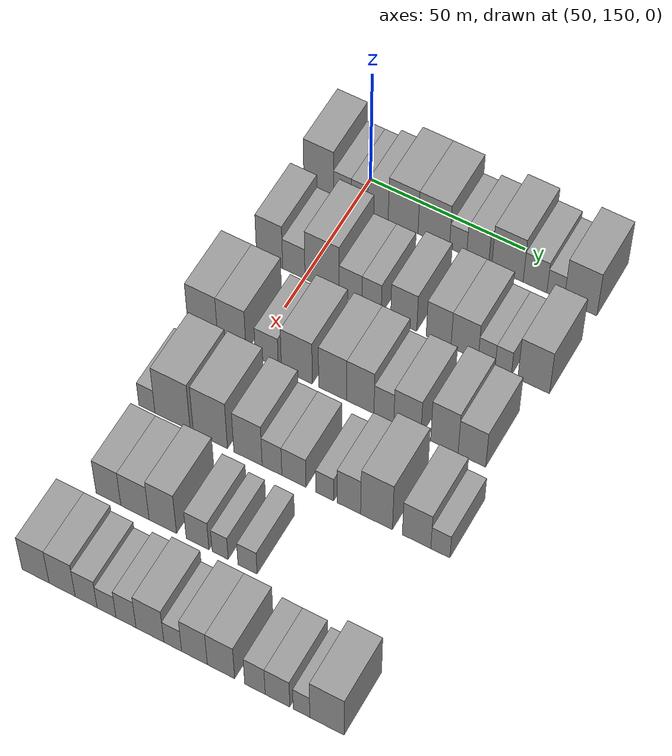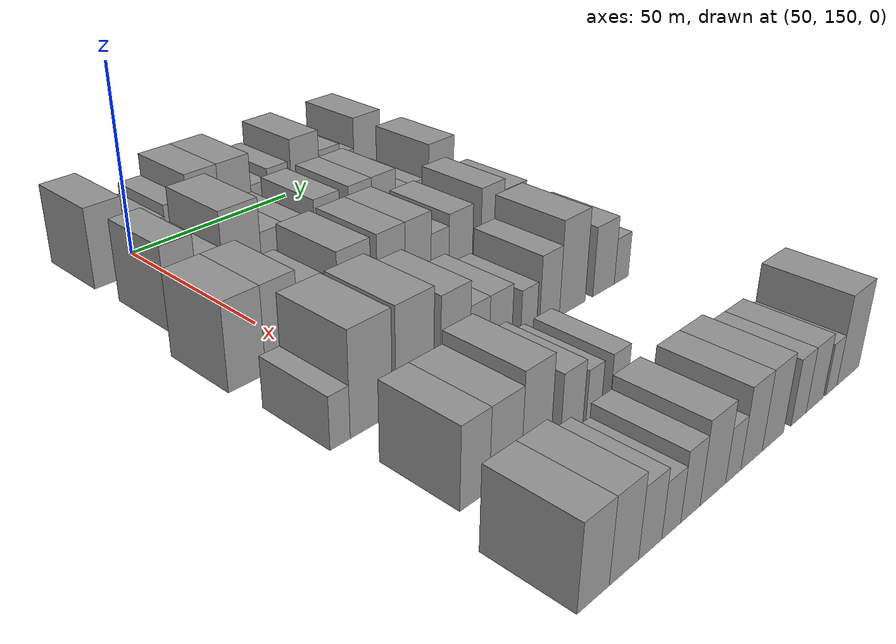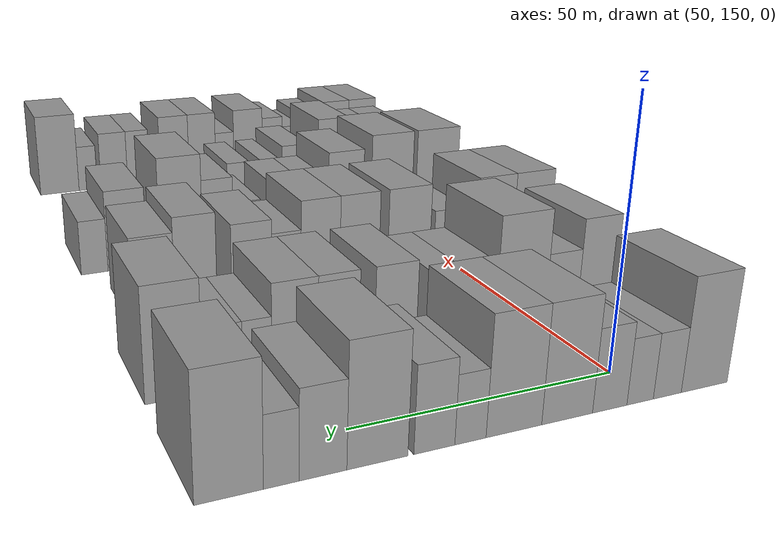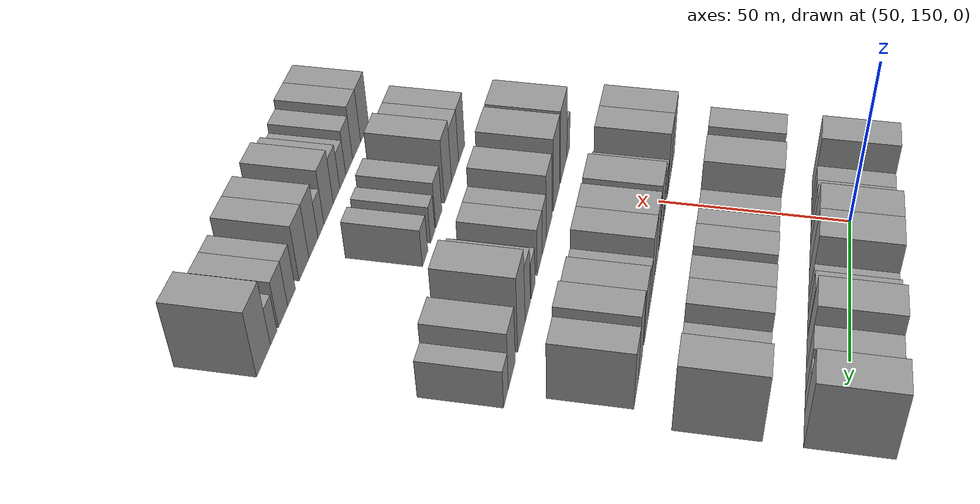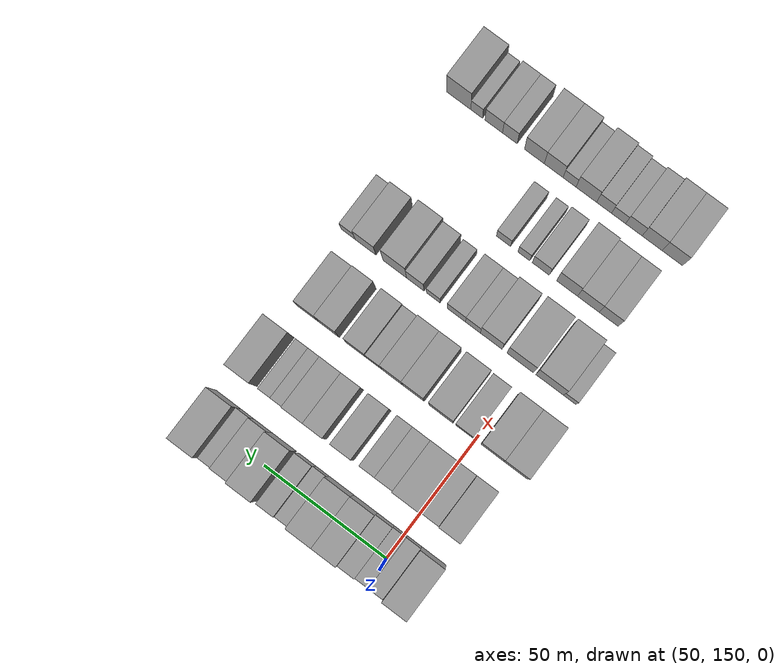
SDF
<sdf version="1.6">
 <world name="default">
  <model name="building_68">
   <static>1</static>
   <pose>50.0000 138.3827 0 0.000000 0.000000 0.000000</pose>
   <link name="link">
    <pose>0 0 10.50 0 0 0</pose>
    <collision name="collision"><geometry><box><size>20.0000 9.7784 21.0000</size></box></geometry></collision>
    <visual name="visual">
     <cast_shadows>0</cast_shadows>
     <geometry><box><size>20.0000 9.7784 21.0000</size></box></geometry>
     <material>
      <script>
       <uri>model://grey_wall/materials/scripts</uri>
       <uri>model://grey_wall/materials/textures</uri>
       <name>vrc/grey_wall</name>
      </script>
     </material>
    </visual>
   </link>
  </model>
  <model name="building_69">
   <static>1</static>
   <pose>50.0000 146.1593 0 0.000000 0.000000 0.000000</pose>
   <link name="link">
    <pose>0 0 6.00 0 0 0</pose>
    <collision name="collision"><geometry><box><size>20.0000 5.7748 12.0000</size></box></geometry></collision>
    <visual name="visual">
     <cast_shadows>0</cast_shadows>
     <geometry><box><size>20.0000 5.7748 12.0000</size></box></geometry>
     <material>
      <script>
       <uri>model://grey_wall/materials/scripts</uri>
       <uri>model://grey_wall/materials/textures</uri>
       <name>vrc/grey_wall</name>
      </script>
     </material>
    </visual>
   </link>
  </model>
  <model name="building_70">
   <static>1</static>
   <pose>50.0000 151.7193 0 0.000000 0.000000 0.000000</pose>
   <link name="link">
    <pose>0 0 6.00 0 0 0</pose>
    <collision name="collision"><geometry><box><size>20.0000 5.3453 12.0000</size></box></geometry></collision>
    <visual name="visual">
     <cast_shadows>0</cast_shadows>
     <geometry><box><size>20.0000 5.3453 12.0000</size></box></geometry>
     <material>
      <script>
       <uri>model://grey_wall/materials/scripts</uri>
       <uri>model://grey_wall/materials/textures</uri>
       <name>vrc/grey_wall</name>
      </script>
     </material>
    </visual>
   </link>
  </model>
  <model name="building_71">
   <static>1</static>
   <pose>50.0000 157.7766 0 0.000000 0.000000 0.000000</pose>
   <link name="link">
    <pose>0 0 7.50 0 0 0</pose>
    <collision name="collision"><geometry><box><size>20.0000 6.7693 15.0000</size></box></geometry></collision>
    <visual name="visual">
     <cast_shadows>0</cast_shadows>
     <geometry><box><size>20.0000 6.7693 15.0000</size></box></geometry>
     <material>
      <script>
       <uri>model://grey_wall/materials/scripts</uri>
       <uri>model://grey_wall/materials/textures</uri>
       <name>vrc/grey_wall</name>
      </script>
     </material>
    </visual>
   </link>
  </model>
  <model name="building_72">
   <static>1</static>
   <pose>50.0000 165.9921 0 0.000000 0.000000 0.000000</pose>
   <link name="link">
    <pose>0 0 10.50 0 0 0</pose>
    <collision name="collision"><geometry><box><size>20.0000 9.6617 21.0000</size></box></geometry></collision>
    <visual name="visual">
     <cast_shadows>0</cast_shadows>
     <geometry><box><size>20.0000 9.6617 21.0000</size></box></geometry>
     <material>
      <script>
       <uri>model://grey_wall/materials/scripts</uri>
       <uri>model://grey_wall/materials/textures</uri>
       <name>vrc/grey_wall</name>
      </script>
     </material>
    </visual>
   </link>
  </model>
  <model name="building_73">
   <static>1</static>
   <pose>50.0000 175.8897 0 0.000000 0.000000 0.000000</pose>
   <link name="link">
    <pose>0 0 10.50 0 0 0</pose>
    <collision name="collision"><geometry><box><size>20.0000 10.1334 21.0000</size></box></geometry></collision>
    <visual name="visual">
     <cast_shadows>0</cast_shadows>
     <geometry><box><size>20.0000 10.1334 21.0000</size></box></geometry>
     <material>
      <script>
       <uri>model://grey_wall/materials/scripts</uri>
       <uri>model://grey_wall/materials/textures</uri>
       <name>vrc/grey_wall</name>
      </script>
     </material>
    </visual>
   </link>
  </model>
  <model name="building_74">
   <static>1</static>
   <pose>50.0000 183.7047 0 0.000000 0.000000 0.000000</pose>
   <link name="link">
    <pose>0 0 6.00 0 0 0</pose>
    <collision name="collision"><geometry><box><size>20.0000 5.4967 12.0000</size></box></geometry></collision>
    <visual name="visual">
     <cast_shadows>0</cast_shadows>
     <geometry><box><size>20.0000 5.4967 12.0000</size></box></geometry>
     <material>
      <script>
       <uri>model://grey_wall/materials/scripts</uri>
       <uri>model://grey_wall/materials/textures</uri>
       <name>vrc/grey_wall</name>
      </script>
     </material>
    </visual>
   </link>
  </model>
  <model name="building_75">
   <static>1</static>
   <pose>50.0000 189.9546 0 0.000000 0.000000 0.000000</pose>
   <link name="link">
    <pose>0 0 7.50 0 0 0</pose>
    <collision name="collision"><geometry><box><size>20.0000 7.0030 15.0000</size></box></geometry></collision>
    <visual name="visual">
     <cast_shadows>0</cast_shadows>
     <geometry><box><size>20.0000 7.0030 15.0000</size></box></geometry>
     <material>
      <script>
       <uri>model://grey_wall/materials/scripts</uri>
       <uri>model://grey_wall/materials/textures</uri>
       <name>vrc/grey_wall</name>
      </script>
     </material>
    </visual>
   </link>
  </model>
  <model name="building_76">
   <static>1</static>
   <pose>50.0000 199.4460 0 0.000000 0.000000 0.000000</pose>
   <link name="link">
    <pose>0 0 10.50 0 0 0</pose>
    <collision name="collision"><geometry><box><size>20.0000 9.9798 21.0000</size></box></geometry></collision>
    <visual name="visual">
     <cast_shadows>0</cast_shadows>
     <geometry><box><size>20.0000 9.9798 21.0000</size></box></geometry>
     <material>
      <script>
       <uri>model://grey_wall/materials/scripts</uri>
       <uri>model://grey_wall/materials/textures</uri>
       <name>vrc/grey_wall</name>
      </script>
     </material>
    </visual>
   </link>
  </model>
  <model name="building_77">
   <static>1</static>
   <pose>50.0000 208.1772 0 0.000000 0.000000 0.000000</pose>
   <link name="link">
    <pose>0 0 7.50 0 0 0</pose>
    <collision name="collision"><geometry><box><size>20.0000 7.4826 15.0000</size></box></geometry></collision>
    <visual name="visual">
     <cast_shadows>0</cast_shadows>
     <geometry><box><size>20.0000 7.4826 15.0000</size></box></geometry>
     <material>
      <script>
       <uri>model://grey_wall/materials/scripts</uri>
       <uri>model://grey_wall/materials/textures</uri>
       <name>vrc/grey_wall</name>
      </script>
     </material>
    </visual>
   </link>
  </model>
  <model name="building_78">
   <static>1</static>
   <pose>50.0000 214.6473 0 0.000000 0.000000 0.000000</pose>
   <link name="link">
    <pose>0 0 6.00 0 0 0</pose>
    <collision name="collision"><geometry><box><size>20.0000 5.4576 12.0000</size></box></geometry></collision>
    <visual name="visual">
     <cast_shadows>0</cast_shadows>
     <geometry><box><size>20.0000 5.4576 12.0000</size></box></geometry>
     <material>
      <script>
       <uri>model://grey_wall/materials/scripts</uri>
       <uri>model://grey_wall/materials/textures</uri>
       <name>vrc/grey_wall</name>
      </script>
     </material>
    </visual>
   </link>
  </model>
  <model name="building_79">
   <static>1</static>
   <pose>50.0000 222.4874 0 0.000000 0.000000 0.000000</pose>
   <link name="link">
    <pose>0 0 10.50 0 0 0</pose>
    <collision name="collision"><geometry><box><size>20.0000 10.2226 21.0000</size></box></geometry></collision>
    <visual name="visual">
     <cast_shadows>0</cast_shadows>
     <geometry><box><size>20.0000 10.2226 21.0000</size></box></geometry>
     <material>
      <script>
       <uri>model://grey_wall/materials/scripts</uri>
       <uri>model://grey_wall/materials/textures</uri>
       <name>vrc/grey_wall</name>
      </script>
     </material>
    </visual>
   </link>
  </model>
  <model name="building_186">
   <static>1</static>
   <pose>79.0000 138.7290 0 0.000000 0.000000 0.000000</pose>
   <link name="link">
    <pose>0 0 10.50 0 0 0</pose>
    <collision name="collision"><geometry><box><size>20.0000 8.4835 21.0000</size></box></geometry></collision>
    <visual name="visual">
     <cast_shadows>0</cast_shadows>
     <geometry><box><size>20.0000 8.4835 21.0000</size></box></geometry>
     <material>
      <script>
       <uri>model://grey_wall/materials/scripts</uri>
       <uri>model://grey_wall/materials/textures</uri>
       <name>vrc/grey_wall</name>
      </script>
     </material>
    </visual>
   </link>
  </model>
  <model name="building_187">
   <static>1</static>
   <pose>79.0000 146.5962 0 0.000000 0.000000 0.000000</pose>
   <link name="link">
    <pose>0 0 7.50 0 0 0</pose>
    <collision name="collision"><geometry><box><size>20.0000 7.2509 15.0000</size></box></geometry></collision>
    <visual name="visual">
     <cast_shadows>0</cast_shadows>
     <geometry><box><size>20.0000 7.2509 15.0000</size></box></geometry>
     <material>
      <script>
       <uri>model://grey_wall/materials/scripts</uri>
       <uri>model://grey_wall/materials/textures</uri>
       <name>vrc/grey_wall</name>
      </script>
     </material>
    </visual>
   </link>
  </model>
  <model name="building_188">
   <static>1</static>
   <pose>79.0000 155.7147 0 0.000000 0.000000 0.000000</pose>
   <link name="link">
    <pose>0 0 12.00 0 0 0</pose>
    <collision name="collision"><geometry><box><size>20.0000 10.9860 24.0000</size></box></geometry></collision>
    <visual name="visual">
     <cast_shadows>0</cast_shadows>
     <geometry><box><size>20.0000 10.9860 24.0000</size></box></geometry>
     <material>
      <script>
       <uri>model://grey_wall/materials/scripts</uri>
       <uri>model://grey_wall/materials/textures</uri>
       <name>vrc/grey_wall</name>
      </script>
     </material>
    </visual>
   </link>
  </model>
  <model name="building_189">
   <static>1</static>
   <pose>79.0000 164.8472 0 0.000000 0.000000 0.000000</pose>
   <link name="link">
    <pose>0 0 7.50 0 0 0</pose>
    <collision name="collision"><geometry><box><size>20.0000 7.2790 15.0000</size></box></geometry></collision>
    <visual name="visual">
     <cast_shadows>0</cast_shadows>
     <geometry><box><size>20.0000 7.2790 15.0000</size></box></geometry>
     <material>
      <script>
       <uri>model://grey_wall/materials/scripts</uri>
       <uri>model://grey_wall/materials/textures</uri>
       <name>vrc/grey_wall</name>
      </script>
     </material>
    </visual>
   </link>
  </model>
  <model name="building_190">
   <static>1</static>
   <pose>79.0000 171.5733 0 0.000000 0.000000 0.000000</pose>
   <link name="link">
    <pose>0 0 7.50 0 0 0</pose>
    <collision name="collision"><geometry><box><size>20.0000 6.1732 15.0000</size></box></geometry></collision>
    <visual name="visual">
     <cast_shadows>0</cast_shadows>
     <geometry><box><size>20.0000 6.1732 15.0000</size></box></geometry>
     <material>
      <script>
       <uri>model://grey_wall/materials/scripts</uri>
       <uri>model://grey_wall/materials/textures</uri>
       <name>vrc/grey_wall</name>
      </script>
     </material>
    </visual>
   </link>
  </model>
  <model name="building_191">
   <static>1</static>
   <pose>79.0000 181.8068 0 0.000000 0.000000 0.000000</pose>
   <link name="link">
    <pose>0 0 9.00 0 0 0</pose>
    <collision name="collision"><geometry><box><size>20.0000 8.2939 18.0000</size></box></geometry></collision>
    <visual name="visual">
     <cast_shadows>0</cast_shadows>
     <geometry><box><size>20.0000 8.2939 18.0000</size></box></geometry>
     <material>
      <script>
       <uri>model://grey_wall/materials/scripts</uri>
       <uri>model://grey_wall/materials/textures</uri>
       <name>vrc/grey_wall</name>
      </script>
     </material>
    </visual>
   </link>
  </model>
  <model name="building_192">
   <static>1</static>
   <pose>79.0000 192.8562 0 0.000000 0.000000 0.000000</pose>
   <link name="link">
    <pose>0 0 9.00 0 0 0</pose>
    <collision name="collision"><geometry><box><size>20.0000 7.8050 18.0000</size></box></geometry></collision>
    <visual name="visual">
     <cast_shadows>0</cast_shadows>
     <geometry><box><size>20.0000 7.8050 18.0000</size></box></geometry>
     <material>
      <script>
       <uri>model://grey_wall/materials/scripts</uri>
       <uri>model://grey_wall/materials/textures</uri>
       <name>vrc/grey_wall</name>
      </script>
     </material>
    </visual>
   </link>
  </model>
  <model name="building_193">
   <static>1</static>
   <pose>79.0000 201.0172 0 0.000000 0.000000 0.000000</pose>
   <link name="link">
    <pose>0 0 9.00 0 0 0</pose>
    <collision name="collision"><geometry><box><size>20.0000 8.5170 18.0000</size></box></geometry></collision>
    <visual name="visual">
     <cast_shadows>0</cast_shadows>
     <geometry><box><size>20.0000 8.5170 18.0000</size></box></geometry>
     <material>
      <script>
       <uri>model://grey_wall/materials/scripts</uri>
       <uri>model://grey_wall/materials/textures</uri>
       <name>vrc/grey_wall</name>
      </script>
     </material>
    </visual>
   </link>
  </model>
  <model name="building_194">
   <static>1</static>
   <pose>79.0000 207.9134 0 0.000000 0.000000 0.000000</pose>
   <link name="link">
    <pose>0 0 6.00 0 0 0</pose>
    <collision name="collision"><geometry><box><size>20.0000 5.2753 12.0000</size></box></geometry></collision>
    <visual name="visual">
     <cast_shadows>0</cast_shadows>
     <geometry><box><size>20.0000 5.2753 12.0000</size></box></geometry>
     <material>
      <script>
       <uri>model://grey_wall/materials/scripts</uri>
       <uri>model://grey_wall/materials/textures</uri>
       <name>vrc/grey_wall</name>
      </script>
     </material>
    </visual>
   </link>
  </model>
  <model name="building_195">
   <static>1</static>
   <pose>79.0000 213.0684 0 0.000000 0.000000 0.000000</pose>
   <link name="link">
    <pose>0 0 6.00 0 0 0</pose>
    <collision name="collision"><geometry><box><size>20.0000 5.0347 12.0000</size></box></geometry></collision>
    <visual name="visual">
     <cast_shadows>0</cast_shadows>
     <geometry><box><size>20.0000 5.0347 12.0000</size></box></geometry>
     <material>
      <script>
       <uri>model://grey_wall/materials/scripts</uri>
       <uri>model://grey_wall/materials/textures</uri>
       <name>vrc/grey_wall</name>
      </script>
     </material>
    </visual>
   </link>
  </model>
  <model name="building_196">
   <static>1</static>
   <pose>79.0000 222.4882 0 0.000000 0.000000 0.000000</pose>
   <link name="link">
    <pose>0 0 10.50 0 0 0</pose>
    <collision name="collision"><geometry><box><size>20.0000 9.8049 21.0000</size></box></geometry></collision>
    <visual name="visual">
     <cast_shadows>0</cast_shadows>
     <geometry><box><size>20.0000 9.8049 21.0000</size></box></geometry>
     <material>
      <script>
       <uri>model://grey_wall/materials/scripts</uri>
       <uri>model://grey_wall/materials/textures</uri>
       <name>vrc/grey_wall</name>
      </script>
     </material>
    </visual>
   </link>
  </model>
  <model name="building_297">
   <static>1</static>
   <pose>108.0000 133.8400 0 0.000000 0.000000 0.000000</pose>
   <link name="link">
    <pose>0 0 10.50 0 0 0</pose>
    <collision name="collision"><geometry><box><size>20.0000 9.6241 21.0000</size></box></geometry></collision>
    <visual name="visual">
     <cast_shadows>0</cast_shadows>
     <geometry><box><size>20.0000 9.6241 21.0000</size></box></geometry>
     <material>
      <script>
       <uri>model://grey_wall/materials/scripts</uri>
       <uri>model://grey_wall/materials/textures</uri>
       <name>vrc/grey_wall</name>
      </script>
     </material>
    </visual>
   </link>
  </model>
  <model name="building_298">
   <static>1</static>
   <pose>108.0000 143.2260 0 0.000000 0.000000 0.000000</pose>
   <link name="link">
    <pose>0 0 10.50 0 0 0</pose>
    <collision name="collision"><geometry><box><size>20.0000 9.1478 21.0000</size></box></geometry></collision>
    <visual name="visual">
     <cast_shadows>0</cast_shadows>
     <geometry><box><size>20.0000 9.1478 21.0000</size></box></geometry>
     <material>
      <script>
       <uri>model://grey_wall/materials/scripts</uri>
       <uri>model://grey_wall/materials/textures</uri>
       <name>vrc/grey_wall</name>
      </script>
     </material>
    </visual>
   </link>
  </model>
  <model name="building_299">
   <static>1</static>
   <pose>108.0000 154.4499 0 0.000000 0.000000 0.000000</pose>
   <link name="link">
    <pose>0 0 7.50 0 0 0</pose>
    <collision name="collision"><geometry><box><size>20.0000 7.3000 15.0000</size></box></geometry></collision>
    <visual name="visual">
     <cast_shadows>0</cast_shadows>
     <geometry><box><size>20.0000 7.3000 15.0000</size></box></geometry>
     <material>
      <script>
       <uri>model://grey_wall/materials/scripts</uri>
       <uri>model://grey_wall/materials/textures</uri>
       <name>vrc/grey_wall</name>
      </script>
     </material>
    </visual>
   </link>
  </model>
  <model name="building_300">
   <static>1</static>
   <pose>108.0000 163.9937 0 0.000000 0.000000 0.000000</pose>
   <link name="link">
    <pose>0 0 10.50 0 0 0</pose>
    <collision name="collision"><geometry><box><size>20.0000 9.7877 21.0000</size></box></geometry></collision>
    <visual name="visual">
     <cast_shadows>0</cast_shadows>
     <geometry><box><size>20.0000 9.7877 21.0000</size></box></geometry>
     <material>
      <script>
       <uri>model://grey_wall/materials/scripts</uri>
       <uri>model://grey_wall/materials/textures</uri>
       <name>vrc/grey_wall</name>
      </script>
     </material>
    </visual>
   </link>
  </model>
  <model name="building_301">
   <static>1</static>
   <pose>108.0000 175.2840 0 0.000000 0.000000 0.000000</pose>
   <link name="link">
    <pose>0 0 10.50 0 0 0</pose>
    <collision name="collision"><geometry><box><size>20.0000 8.7928 21.0000</size></box></geometry></collision>
    <visual name="visual">
     <cast_shadows>0</cast_shadows>
     <geometry><box><size>20.0000 8.7928 21.0000</size></box></geometry>
     <material>
      <script>
       <uri>model://grey_wall/materials/scripts</uri>
       <uri>model://grey_wall/materials/textures</uri>
       <name>vrc/grey_wall</name>
      </script>
     </material>
    </visual>
   </link>
  </model>
  <model name="building_302">
   <static>1</static>
   <pose>108.0000 183.9537 0 0.000000 0.000000 0.000000</pose>
   <link name="link">
    <pose>0 0 10.50 0 0 0</pose>
    <collision name="collision"><geometry><box><size>20.0000 8.5467 21.0000</size></box></geometry></collision>
    <visual name="visual">
     <cast_shadows>0</cast_shadows>
     <geometry><box><size>20.0000 8.5467 21.0000</size></box></geometry>
     <material>
      <script>
       <uri>model://grey_wall/materials/scripts</uri>
       <uri>model://grey_wall/materials/textures</uri>
       <name>vrc/grey_wall</name>
      </script>
     </material>
    </visual>
   </link>
  </model>
  <model name="building_303">
   <static>1</static>
   <pose>108.0000 191.3135 0 0.000000 0.000000 0.000000</pose>
   <link name="link">
    <pose>0 0 7.50 0 0 0</pose>
    <collision name="collision"><geometry><box><size>20.0000 6.1730 15.0000</size></box></geometry></collision>
    <visual name="visual">
     <cast_shadows>0</cast_shadows>
     <geometry><box><size>20.0000 6.1730 15.0000</size></box></geometry>
     <material>
      <script>
       <uri>model://grey_wall/materials/scripts</uri>
       <uri>model://grey_wall/materials/textures</uri>
       <name>vrc/grey_wall</name>
      </script>
     </material>
    </visual>
   </link>
  </model>
  <model name="building_304">
   <static>1</static>
   <pose>108.0000 198.6017 0 0.000000 0.000000 0.000000</pose>
   <link name="link">
    <pose>0 0 9.00 0 0 0</pose>
    <collision name="collision"><geometry><box><size>20.0000 8.4033 18.0000</size></box></geometry></collision>
    <visual name="visual">
     <cast_shadows>0</cast_shadows>
     <geometry><box><size>20.0000 8.4033 18.0000</size></box></geometry>
     <material>
      <script>
       <uri>model://grey_wall/materials/scripts</uri>
       <uri>model://grey_wall/materials/textures</uri>
       <name>vrc/grey_wall</name>
      </script>
     </material>
    </visual>
   </link>
  </model>
  <model name="building_305">
   <static>1</static>
   <pose>108.0000 210.0234 0 0.000000 0.000000 0.000000</pose>
   <link name="link">
    <pose>0 0 10.50 0 0 0</pose>
    <collision name="collision"><geometry><box><size>20.0000 8.4401 21.0000</size></box></geometry></collision>
    <visual name="visual">
     <cast_shadows>0</cast_shadows>
     <geometry><box><size>20.0000 8.4401 21.0000</size></box></geometry>
     <material>
      <script>
       <uri>model://grey_wall/materials/scripts</uri>
       <uri>model://grey_wall/materials/textures</uri>
       <name>vrc/grey_wall</name>
      </script>
     </material>
    </visual>
   </link>
  </model>
  <model name="building_306">
   <static>1</static>
   <pose>108.0000 218.4593 0 0.000000 0.000000 0.000000</pose>
   <link name="link">
    <pose>0 0 9.00 0 0 0</pose>
    <collision name="collision"><geometry><box><size>20.0000 8.4318 18.0000</size></box></geometry></collision>
    <visual name="visual">
     <cast_shadows>0</cast_shadows>
     <geometry><box><size>20.0000 8.4318 18.0000</size></box></geometry>
     <material>
      <script>
       <uri>model://grey_wall/materials/scripts</uri>
       <uri>model://grey_wall/materials/textures</uri>
       <name>vrc/grey_wall</name>
      </script>
     </material>
    </visual>
   </link>
  </model>
  <model name="building_406">
   <static>1</static>
   <pose>137.0000 133.2210 0 0.000000 0.000000 0.000000</pose>
   <link name="link">
    <pose>0 0 6.00 0 0 0</pose>
    <collision name="collision"><geometry><box><size>20.0000 5.1366 12.0000</size></box></geometry></collision>
    <visual name="visual">
     <cast_shadows>0</cast_shadows>
     <geometry><box><size>20.0000 5.1366 12.0000</size></box></geometry>
     <material>
      <script>
       <uri>model://grey_wall/materials/scripts</uri>
       <uri>model://grey_wall/materials/textures</uri>
       <name>vrc/grey_wall</name>
      </script>
     </material>
    </visual>
   </link>
  </model>
  <model name="building_407">
   <static>1</static>
   <pose>137.0000 141.3851 0 0.000000 0.000000 0.000000</pose>
   <link name="link">
    <pose>0 0 12.00 0 0 0</pose>
    <collision name="collision"><geometry><box><size>20.0000 11.1916 24.0000</size></box></geometry></collision>
    <visual name="visual">
     <cast_shadows>0</cast_shadows>
     <geometry><box><size>20.0000 11.1916 24.0000</size></box></geometry>
     <material>
      <script>
       <uri>model://grey_wall/materials/scripts</uri>
       <uri>model://grey_wall/materials/textures</uri>
       <name>vrc/grey_wall</name>
      </script>
     </material>
    </visual>
   </link>
  </model>
  <model name="building_408">
   <static>1</static>
   <pose>137.0000 153.3706 0 0.000000 0.000000 0.000000</pose>
   <link name="link">
    <pose>0 0 12.00 0 0 0</pose>
    <collision name="collision"><geometry><box><size>20.0000 10.7793 24.0000</size></box></geometry></collision>
    <visual name="visual">
     <cast_shadows>0</cast_shadows>
     <geometry><box><size>20.0000 10.7793 24.0000</size></box></geometry>
     <material>
      <script>
       <uri>model://grey_wall/materials/scripts</uri>
       <uri>model://grey_wall/materials/textures</uri>
       <name>vrc/grey_wall</name>
      </script>
     </material>
    </visual>
   </link>
  </model>
  <model name="building_409">
   <static>1</static>
   <pose>137.0000 165.1963 0 0.000000 0.000000 0.000000</pose>
   <link name="link">
    <pose>0 0 10.50 0 0 0</pose>
    <collision name="collision"><geometry><box><size>20.0000 8.8721 21.0000</size></box></geometry></collision>
    <visual name="visual">
     <cast_shadows>0</cast_shadows>
     <geometry><box><size>20.0000 8.8721 21.0000</size></box></geometry>
     <material>
      <script>
       <uri>model://grey_wall/materials/scripts</uri>
       <uri>model://grey_wall/materials/textures</uri>
       <name>vrc/grey_wall</name>
      </script>
     </material>
    </visual>
   </link>
  </model>
  <model name="building_410">
   <static>1</static>
   <pose>137.0000 172.6875 0 0.000000 0.000000 0.000000</pose>
   <link name="link">
    <pose>0 0 7.50 0 0 0</pose>
    <collision name="collision"><geometry><box><size>20.0000 6.1104 15.0000</size></box></geometry></collision>
    <visual name="visual">
     <cast_shadows>0</cast_shadows>
     <geometry><box><size>20.0000 6.1104 15.0000</size></box></geometry>
     <material>
      <script>
       <uri>model://grey_wall/materials/scripts</uri>
       <uri>model://grey_wall/materials/textures</uri>
       <name>vrc/grey_wall</name>
      </script>
     </material>
    </visual>
   </link>
  </model>
  <model name="building_411">
   <static>1</static>
   <pose>137.0000 179.4876 0 0.000000 0.000000 0.000000</pose>
   <link name="link">
    <pose>0 0 7.50 0 0 0</pose>
    <collision name="collision"><geometry><box><size>20.0000 7.4898 15.0000</size></box></geometry></collision>
    <visual name="visual">
     <cast_shadows>0</cast_shadows>
     <geometry><box><size>20.0000 7.4898 15.0000</size></box></geometry>
     <material>
      <script>
       <uri>model://grey_wall/materials/scripts</uri>
       <uri>model://grey_wall/materials/textures</uri>
       <name>vrc/grey_wall</name>
      </script>
     </material>
    </visual>
   </link>
  </model>
  <model name="building_412">
   <static>1</static>
   <pose>137.0000 189.0177 0 0.000000 0.000000 0.000000</pose>
   <link name="link">
    <pose>0 0 6.00 0 0 0</pose>
    <collision name="collision"><geometry><box><size>20.0000 5.5703 12.0000</size></box></geometry></collision>
    <visual name="visual">
     <cast_shadows>0</cast_shadows>
     <geometry><box><size>20.0000 5.5703 12.0000</size></box></geometry>
     <material>
      <script>
       <uri>model://grey_wall/materials/scripts</uri>
       <uri>model://grey_wall/materials/textures</uri>
       <name>vrc/grey_wall</name>
      </script>
     </material>
    </visual>
   </link>
  </model>
  <model name="building_413">
   <static>1</static>
   <pose>137.0000 196.4068 0 0.000000 0.000000 0.000000</pose>
   <link name="link">
    <pose>0 0 9.00 0 0 0</pose>
    <collision name="collision"><geometry><box><size>20.0000 7.2078 18.0000</size></box></geometry></collision>
    <visual name="visual">
     <cast_shadows>0</cast_shadows>
     <geometry><box><size>20.0000 7.2078 18.0000</size></box></geometry>
     <material>
      <script>
       <uri>model://grey_wall/materials/scripts</uri>
       <uri>model://grey_wall/materials/textures</uri>
       <name>vrc/grey_wall</name>
      </script>
     </material>
    </visual>
   </link>
  </model>
  <model name="building_414">
   <static>1</static>
   <pose>137.0000 204.8670 0 0.000000 0.000000 0.000000</pose>
   <link name="link">
    <pose>0 0 12.00 0 0 0</pose>
    <collision name="collision"><geometry><box><size>20.0000 9.7126 24.0000</size></box></geometry></collision>
    <visual name="visual">
     <cast_shadows>0</cast_shadows>
     <geometry><box><size>20.0000 9.7126 24.0000</size></box></geometry>
     <material>
      <script>
       <uri>model://grey_wall/materials/scripts</uri>
       <uri>model://grey_wall/materials/textures</uri>
       <name>vrc/grey_wall</name>
      </script>
     </material>
    </visual>
   </link>
  </model>
  <model name="building_415">
   <static>1</static>
   <pose>137.0000 217.0311 0 0.000000 0.000000 0.000000</pose>
   <link name="link">
    <pose>0 0 9.00 0 0 0</pose>
    <collision name="collision"><geometry><box><size>20.0000 8.6156 18.0000</size></box></geometry></collision>
    <visual name="visual">
     <cast_shadows>0</cast_shadows>
     <geometry><box><size>20.0000 8.6156 18.0000</size></box></geometry>
     <material>
      <script>
       <uri>model://grey_wall/materials/scripts</uri>
       <uri>model://grey_wall/materials/textures</uri>
       <name>vrc/grey_wall</name>
      </script>
     </material>
    </visual>
   </link>
  </model>
  <model name="building_416">
   <static>1</static>
   <pose>137.0000 224.2102 0 0.000000 0.000000 0.000000</pose>
   <link name="link">
    <pose>0 0 6.00 0 0 0</pose>
    <collision name="collision"><geometry><box><size>20.0000 5.7427 12.0000</size></box></geometry></collision>
    <visual name="visual">
     <cast_shadows>0</cast_shadows>
     <geometry><box><size>20.0000 5.7427 12.0000</size></box></geometry>
     <material>
      <script>
       <uri>model://grey_wall/materials/scripts</uri>
       <uri>model://grey_wall/materials/textures</uri>
       <name>vrc/grey_wall</name>
      </script>
     </material>
    </visual>
   </link>
  </model>
  <model name="building_520">
   <static>1</static>
   <pose>166.0000 138.6807 0 0.000000 0.000000 0.000000</pose>
   <link name="link">
    <pose>0 0 9.00 0 0 0</pose>
    <collision name="collision"><geometry><box><size>20.0000 7.7833 18.0000</size></box></geometry></collision>
    <visual name="visual">
     <cast_shadows>0</cast_shadows>
     <geometry><box><size>20.0000 7.7833 18.0000</size></box></geometry>
     <material>
      <script>
       <uri>model://grey_wall/materials/scripts</uri>
       <uri>model://grey_wall/materials/textures</uri>
       <name>vrc/grey_wall</name>
      </script>
     </material>
    </visual>
   </link>
  </model>
  <model name="building_521">
   <static>1</static>
   <pose>166.0000 146.9888 0 0.000000 0.000000 0.000000</pose>
   <link name="link">
    <pose>0 0 9.00 0 0 0</pose>
    <collision name="collision"><geometry><box><size>20.0000 8.8329 18.0000</size></box></geometry></collision>
    <visual name="visual">
     <cast_shadows>0</cast_shadows>
     <geometry><box><size>20.0000 8.8329 18.0000</size></box></geometry>
     <material>
      <script>
       <uri>model://grey_wall/materials/scripts</uri>
       <uri>model://grey_wall/materials/textures</uri>
       <name>vrc/grey_wall</name>
      </script>
     </material>
    </visual>
   </link>
  </model>
  <model name="building_522">
   <static>1</static>
   <pose>166.0000 155.6820 0 0.000000 0.000000 0.000000</pose>
   <link name="link">
    <pose>0 0 10.50 0 0 0</pose>
    <collision name="collision"><geometry><box><size>20.0000 8.5534 21.0000</size></box></geometry></collision>
    <visual name="visual">
     <cast_shadows>0</cast_shadows>
     <geometry><box><size>20.0000 8.5534 21.0000</size></box></geometry>
     <material>
      <script>
       <uri>model://grey_wall/materials/scripts</uri>
       <uri>model://grey_wall/materials/textures</uri>
       <name>vrc/grey_wall</name>
      </script>
     </material>
    </visual>
   </link>
  </model>
  <model name="building_523">
   <static>1</static>
   <pose>166.0000 166.4662 0 0.000000 0.000000 0.000000</pose>
   <link name="link">
    <pose>0 0 7.50 0 0 0</pose>
    <collision name="collision"><geometry><box><size>20.0000 7.0150 15.0000</size></box></geometry></collision>
    <visual name="visual">
     <cast_shadows>0</cast_shadows>
     <geometry><box><size>20.0000 7.0150 15.0000</size></box></geometry>
     <material>
      <script>
       <uri>model://grey_wall/materials/scripts</uri>
       <uri>model://grey_wall/materials/textures</uri>
       <name>vrc/grey_wall</name>
      </script>
     </material>
    </visual>
   </link>
  </model>
  <model name="building_524">
   <static>1</static>
   <pose>166.0000 173.4286 0 0.000000 0.000000 0.000000</pose>
   <link name="link">
    <pose>0 0 6.00 0 0 0</pose>
    <collision name="collision"><geometry><box><size>20.0000 4.9099 12.0000</size></box></geometry></collision>
    <visual name="visual">
     <cast_shadows>0</cast_shadows>
     <geometry><box><size>20.0000 4.9099 12.0000</size></box></geometry>
     <material>
      <script>
       <uri>model://grey_wall/materials/scripts</uri>
       <uri>model://grey_wall/materials/textures</uri>
       <name>vrc/grey_wall</name>
      </script>
     </material>
    </visual>
   </link>
  </model>
  <model name="building_525">
   <static>1</static>
   <pose>166.0000 181.8122 0 0.000000 0.000000 0.000000</pose>
   <link name="link">
    <pose>0 0 6.00 0 0 0</pose>
    <collision name="collision"><geometry><box><size>20.0000 5.8572 12.0000</size></box></geometry></collision>
    <visual name="visual">
     <cast_shadows>0</cast_shadows>
     <geometry><box><size>20.0000 5.8572 12.0000</size></box></geometry>
     <material>
      <script>
       <uri>model://grey_wall/materials/scripts</uri>
       <uri>model://grey_wall/materials/textures</uri>
       <name>vrc/grey_wall</name>
      </script>
     </material>
    </visual>
   </link>
  </model>
  <model name="building_628">
   <static>1</static>
   <pose>195.0000 133.8764 0 0.000000 0.000000 0.000000</pose>
   <link name="link">
    <pose>0 0 9.00 0 0 0</pose>
    <collision name="collision"><geometry><box><size>20.0000 8.4369 18.0000</size></box></geometry></collision>
    <visual name="visual">
     <cast_shadows>0</cast_shadows>
     <geometry><box><size>20.0000 8.4369 18.0000</size></box></geometry>
     <material>
      <script>
       <uri>model://grey_wall/materials/scripts</uri>
       <uri>model://grey_wall/materials/textures</uri>
       <name>vrc/grey_wall</name>
      </script>
     </material>
    </visual>
   </link>
  </model>
  <model name="building_629">
   <static>1</static>
   <pose>195.0000 142.1509 0 0.000000 0.000000 0.000000</pose>
   <link name="link">
    <pose>0 0 9.00 0 0 0</pose>
    <collision name="collision"><geometry><box><size>20.0000 8.1122 18.0000</size></box></geometry></collision>
    <visual name="visual">
     <cast_shadows>0</cast_shadows>
     <geometry><box><size>20.0000 8.1122 18.0000</size></box></geometry>
     <material>
      <script>
       <uri>model://grey_wall/materials/scripts</uri>
       <uri>model://grey_wall/materials/textures</uri>
       <name>vrc/grey_wall</name>
      </script>
     </material>
    </visual>
   </link>
  </model>
  <model name="building_630">
   <static>1</static>
   <pose>195.0000 149.5952 0 0.000000 0.000000 0.000000</pose>
   <link name="link">
    <pose>0 0 7.50 0 0 0</pose>
    <collision name="collision"><geometry><box><size>20.0000 6.7763 15.0000</size></box></geometry></collision>
    <visual name="visual">
     <cast_shadows>0</cast_shadows>
     <geometry><box><size>20.0000 6.7763 15.0000</size></box></geometry>
     <material>
      <script>
       <uri>model://grey_wall/materials/scripts</uri>
       <uri>model://grey_wall/materials/textures</uri>
       <name>vrc/grey_wall</name>
      </script>
     </material>
    </visual>
   </link>
  </model>
  <model name="building_631">
   <static>1</static>
   <pose>195.0000 155.8962 0 0.000000 0.000000 0.000000</pose>
   <link name="link">
    <pose>0 0 6.00 0 0 0</pose>
    <collision name="collision"><geometry><box><size>20.0000 5.8258 12.0000</size></box></geometry></collision>
    <visual name="visual">
     <cast_shadows>0</cast_shadows>
     <geometry><box><size>20.0000 5.8258 12.0000</size></box></geometry>
     <material>
      <script>
       <uri>model://grey_wall/materials/scripts</uri>
       <uri>model://grey_wall/materials/textures</uri>
       <name>vrc/grey_wall</name>
      </script>
     </material>
    </visual>
   </link>
  </model>
  <model name="building_632">
   <static>1</static>
   <pose>195.0000 161.8676 0 0.000000 0.000000 0.000000</pose>
   <link name="link">
    <pose>0 0 7.50 0 0 0</pose>
    <collision name="collision"><geometry><box><size>20.0000 6.1170 15.0000</size></box></geometry></collision>
    <visual name="visual">
     <cast_shadows>0</cast_shadows>
     <geometry><box><size>20.0000 6.1170 15.0000</size></box></geometry>
     <material>
      <script>
       <uri>model://grey_wall/materials/scripts</uri>
       <uri>model://grey_wall/materials/textures</uri>
       <name>vrc/grey_wall</name>
      </script>
     </material>
    </visual>
   </link>
  </model>
  <model name="building_633">
   <static>1</static>
   <pose>195.0000 169.1737 0 0.000000 0.000000 0.000000</pose>
   <link name="link">
    <pose>0 0 9.00 0 0 0</pose>
    <collision name="collision"><geometry><box><size>20.0000 8.4952 18.0000</size></box></geometry></collision>
    <visual name="visual">
     <cast_shadows>0</cast_shadows>
     <geometry><box><size>20.0000 8.4952 18.0000</size></box></geometry>
     <material>
      <script>
       <uri>model://grey_wall/materials/scripts</uri>
       <uri>model://grey_wall/materials/textures</uri>
       <name>vrc/grey_wall</name>
      </script>
     </material>
    </visual>
   </link>
  </model>
  <model name="building_634">
   <static>1</static>
   <pose>195.0000 176.1057 0 0.000000 0.000000 0.000000</pose>
   <link name="link">
    <pose>0 0 6.00 0 0 0</pose>
    <collision name="collision"><geometry><box><size>20.0000 5.3687 12.0000</size></box></geometry></collision>
    <visual name="visual">
     <cast_shadows>0</cast_shadows>
     <geometry><box><size>20.0000 5.3687 12.0000</size></box></geometry>
     <material>
      <script>
       <uri>model://grey_wall/materials/scripts</uri>
       <uri>model://grey_wall/materials/textures</uri>
       <name>vrc/grey_wall</name>
      </script>
     </material>
    </visual>
   </link>
  </model>
  <model name="building_635">
   <static>1</static>
   <pose>195.0000 182.6674 0 0.000000 0.000000 0.000000</pose>
   <link name="link">
    <pose>0 0 9.00 0 0 0</pose>
    <collision name="collision"><geometry><box><size>20.0000 7.7547 18.0000</size></box></geometry></collision>
    <visual name="visual">
     <cast_shadows>0</cast_shadows>
     <geometry><box><size>20.0000 7.7547 18.0000</size></box></geometry>
     <material>
      <script>
       <uri>model://grey_wall/materials/scripts</uri>
       <uri>model://grey_wall/materials/textures</uri>
       <name>vrc/grey_wall</name>
      </script>
     </material>
    </visual>
   </link>
  </model>
  <model name="building_636">
   <static>1</static>
   <pose>195.0000 190.6454 0 0.000000 0.000000 0.000000</pose>
   <link name="link">
    <pose>0 0 9.00 0 0 0</pose>
    <collision name="collision"><geometry><box><size>20.0000 8.2012 18.0000</size></box></geometry></collision>
    <visual name="visual">
     <cast_shadows>0</cast_shadows>
     <geometry><box><size>20.0000 8.2012 18.0000</size></box></geometry>
     <material>
      <script>
       <uri>model://grey_wall/materials/scripts</uri>
       <uri>model://grey_wall/materials/textures</uri>
       <name>vrc/grey_wall</name>
      </script>
     </material>
    </visual>
   </link>
  </model>
  <model name="building_637">
   <static>1</static>
   <pose>195.0000 200.7954 0 0.000000 0.000000 0.000000</pose>
   <link name="link">
    <pose>0 0 7.50 0 0 0</pose>
    <collision name="collision"><geometry><box><size>20.0000 6.0988 15.0000</size></box></geometry></collision>
    <visual name="visual">
     <cast_shadows>0</cast_shadows>
     <geometry><box><size>20.0000 6.0988 15.0000</size></box></geometry>
     <material>
      <script>
       <uri>model://grey_wall/materials/scripts</uri>
       <uri>model://grey_wall/materials/textures</uri>
       <name>vrc/grey_wall</name>
      </script>
     </material>
    </visual>
   </link>
  </model>
  <model name="building_638">
   <static>1</static>
   <pose>195.0000 207.4893 0 0.000000 0.000000 0.000000</pose>
   <link name="link">
    <pose>0 0 7.50 0 0 0</pose>
    <collision name="collision"><geometry><box><size>20.0000 7.2890 15.0000</size></box></geometry></collision>
    <visual name="visual">
     <cast_shadows>0</cast_shadows>
     <geometry><box><size>20.0000 7.2890 15.0000</size></box></geometry>
     <material>
      <script>
       <uri>model://grey_wall/materials/scripts</uri>
       <uri>model://grey_wall/materials/textures</uri>
       <name>vrc/grey_wall</name>
      </script>
     </material>
    </visual>
   </link>
  </model>
  <model name="building_639">
   <static>1</static>
   <pose>195.0000 214.5887 0 0.000000 0.000000 0.000000</pose>
   <link name="link">
    <pose>0 0 6.00 0 0 0</pose>
    <collision name="collision"><geometry><box><size>20.0000 4.9098 12.0000</size></box></geometry></collision>
    <visual name="visual">
     <cast_shadows>0</cast_shadows>
     <geometry><box><size>20.0000 4.9098 12.0000</size></box></geometry>
     <material>
      <script>
       <uri>model://grey_wall/materials/scripts</uri>
       <uri>model://grey_wall/materials/textures</uri>
       <name>vrc/grey_wall</name>
      </script>
     </material>
    </visual>
   </link>
  </model>
  <model name="building_640">
   <static>1</static>
   <pose>195.0000 222.0893 0 0.000000 0.000000 0.000000</pose>
   <link name="link">
    <pose>0 0 10.50 0 0 0</pose>
    <collision name="collision"><geometry><box><size>20.0000 10.0914 21.0000</size></box></geometry></collision>
    <visual name="visual">
     <cast_shadows>0</cast_shadows>
     <geometry><box><size>20.0000 10.0914 21.0000</size></box></geometry>
     <material>
      <script>
       <uri>model://grey_wall/materials/scripts</uri>
       <uri>model://grey_wall/materials/textures</uri>
       <name>vrc/grey_wall</name>
      </script>
     </material>
    </visual>
   </link>
  </model>
 </world>
</sdf>
